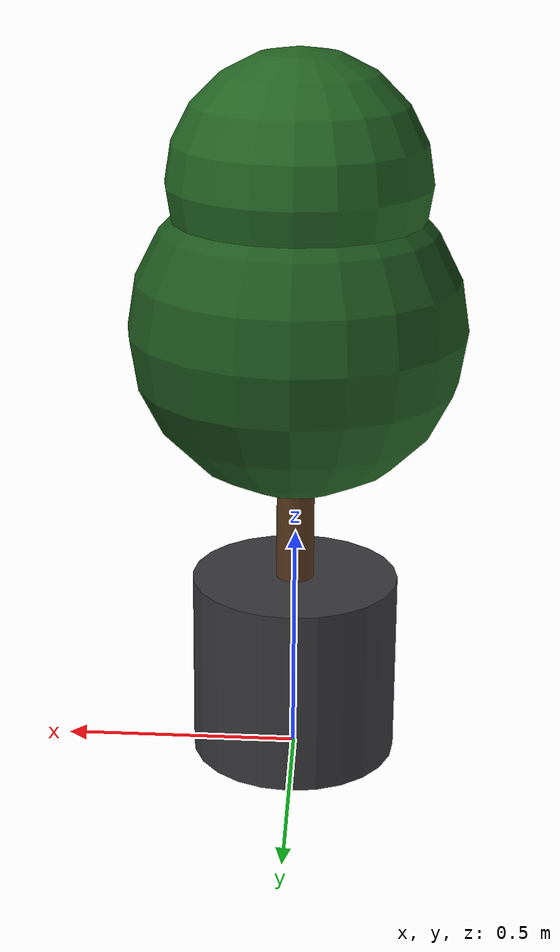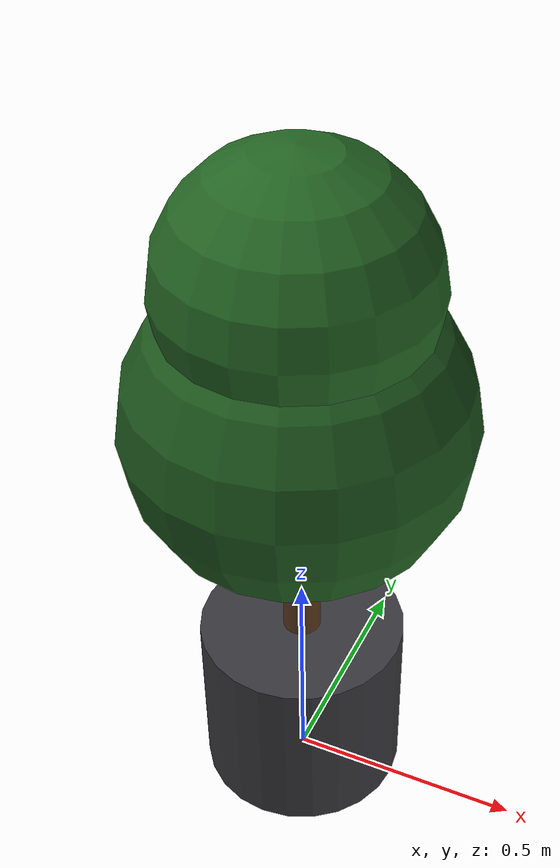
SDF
<?xml version="1.0" ?>
<sdf version="1.6">
  <model name="indoor_plant">
    <static>true</static>
    <link name="plant_link">
      <!-- R5 collision: pot + trunk footprint only -->
      <collision name="pot_col">
        <pose>0 0 0.45 0 0 0</pose>
        <geometry><cylinder><radius>0.22</radius><length>0.9</length></cylinder></geometry>
      </collision>

      <!-- Pot -->
      <visual name="pot_vis">
        <pose>0 0 0.20 0 0 0</pose>
        <geometry><cylinder><radius>0.22</radius><length>0.40</length></cylinder></geometry>
        <material><ambient>0.15 0.15 0.16 1</ambient><diffuse>0.22 0.22 0.24 1</diffuse><specular>0.30 0.30 0.32 1</specular></material>
      </visual>
      <!-- Trunk -->
      <visual name="trunk_vis">
        <pose>0 0 0.55 0 0 0</pose>
        <geometry><cylinder><radius>0.04</radius><length>0.40</length></cylinder></geometry>
        <material><ambient>0.25 0.16 0.08 1</ambient><diffuse>0.35 0.22 0.11 1</diffuse><specular>0.05 0.05 0.05 1</specular></material>
      </visual>
      <!-- Foliage (visual only) -->
      <visual name="foliage_lower_vis">
        <pose>0 0 0.95 0 0 0</pose>
        <geometry><sphere><radius>0.35</radius></sphere></geometry>
        <material><ambient>0.08 0.22 0.08 1</ambient><diffuse>0.12 0.35 0.12 1</diffuse><specular>0.05 0.08 0.05 1</specular></material>
      </visual>
      <visual name="foliage_upper_vis">
        <pose>0 0 1.25 0 0 0</pose>
        <geometry><sphere><radius>0.27</radius></sphere></geometry>
        <material><ambient>0.09 0.26 0.09 1</ambient><diffuse>0.14 0.40 0.14 1</diffuse><specular>0.05 0.08 0.05 1</specular></material>
      </visual>
    </link>
  </model>
</sdf>
